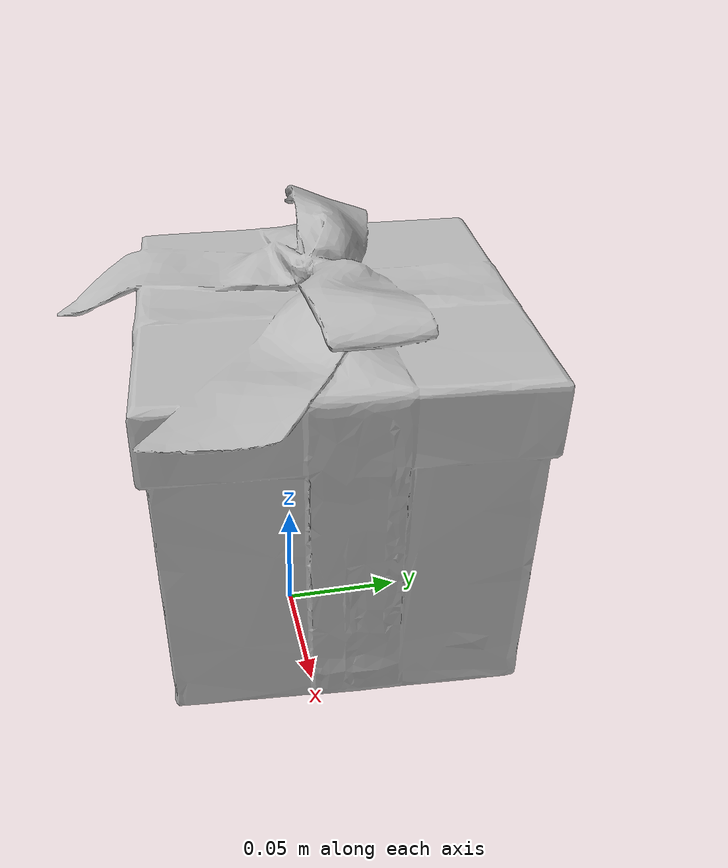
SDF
<?xml version="1.0" ?>
<sdf version="1.6">
  <model name="KS_Chocolate_Cube_Box_Assortment_By_Neuhaus_2010_Ounces">
    <static>false</static>
    <link name="link_0">

      <inertial>
        <mass>0.1</mass>
        <inertia>
          <ixx>0.001</ixx>
          <iyy>0.001</iyy>
          <izz>0.001</izz>
          <ixy>0</ixy>
          <ixz>0</ixz>
          <iyz>0</iyz>
        </inertia>
      </inertial>

      <visual name="visual">
      <pose>0 0 0.0025 0 0 0</pose>
        <geometry>
          <mesh>
            <uri>meshes/model.obj</uri>
          </mesh>
        </geometry>
      </visual>

      <collision name="collision_0">
        <geometry>
          <box>
            <size>0.15 0.15 0.15</size>
          </box>
        </geometry>
        <surface>
          <friction>
            <ode>
              <mu>1.5</mu>
              <mu2>1.5</mu2>
            </ode>
          </friction>
          <contact>
            <ode>
              <kp>100000</kp>
              <kd>1.0</kd>
            </ode>
          </contact>
        </surface>
      </collision>

    </link>
  </model>
</sdf>
